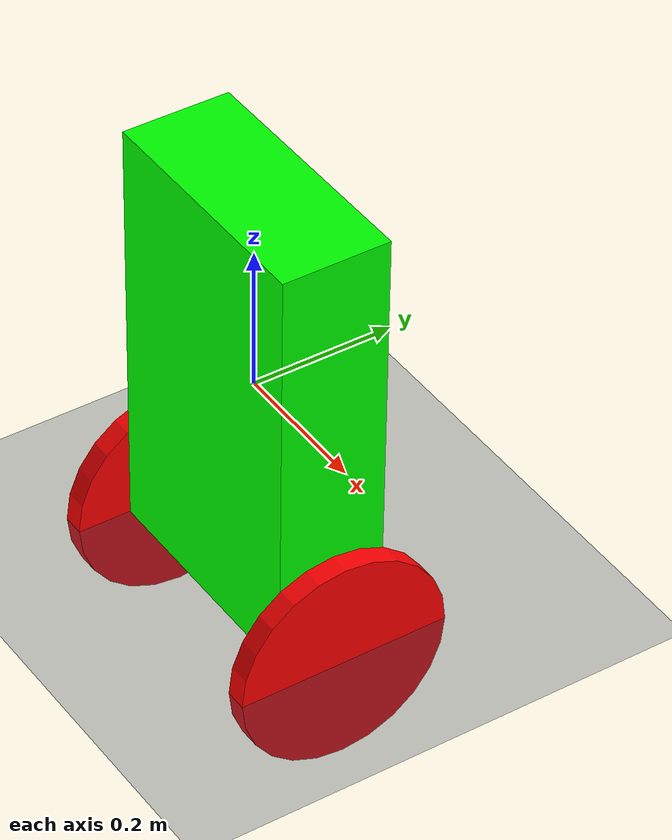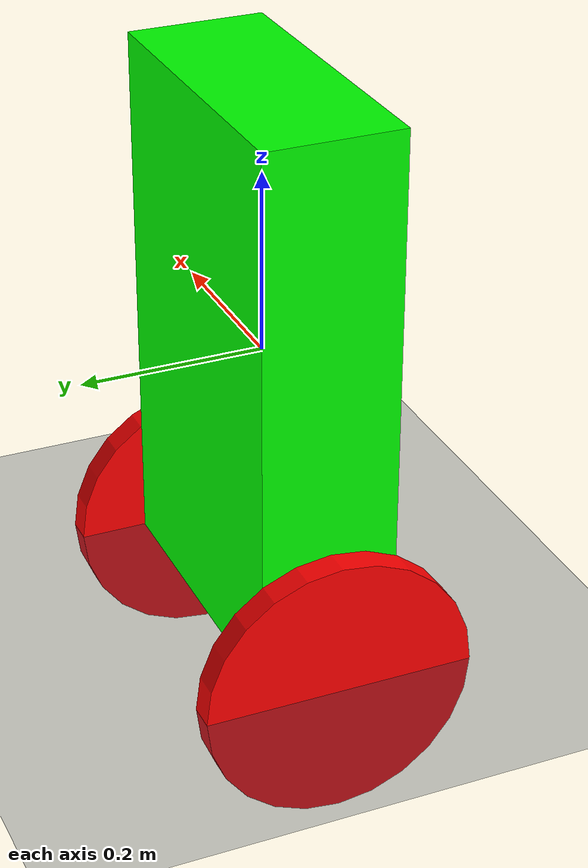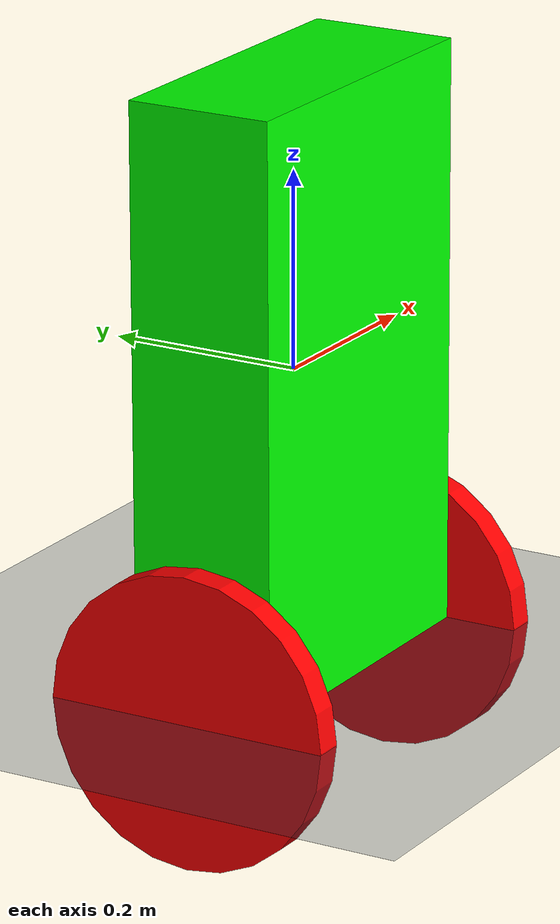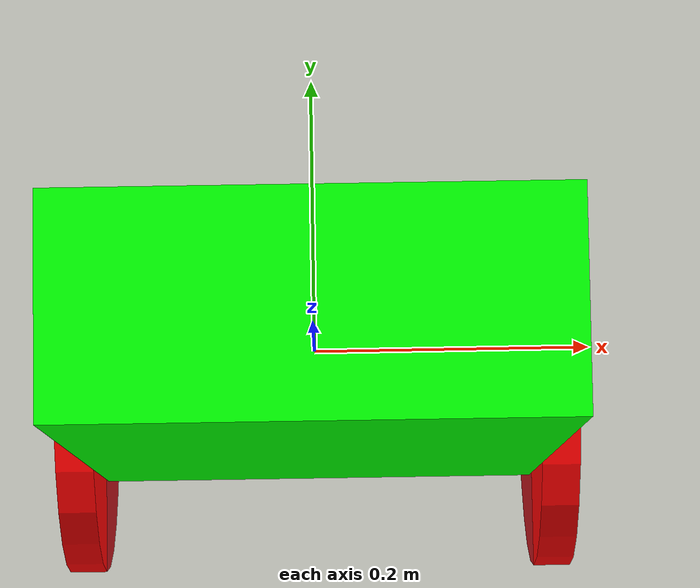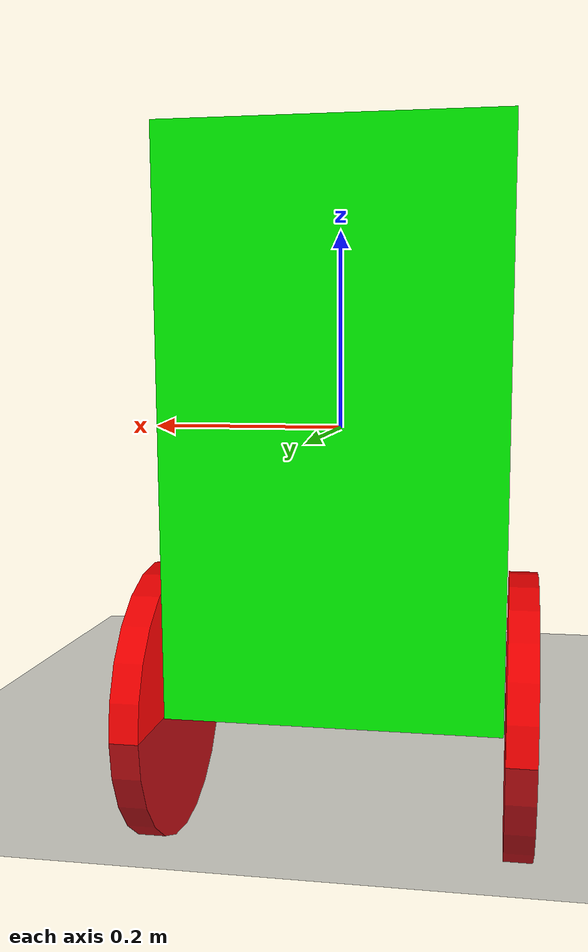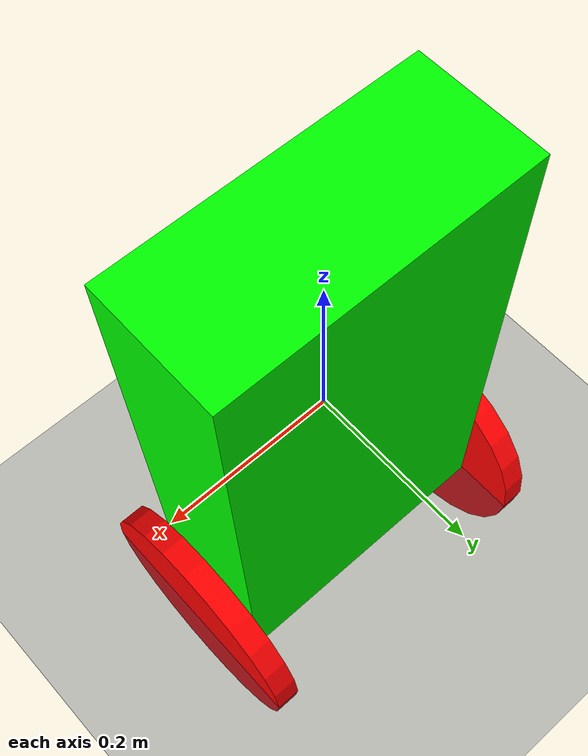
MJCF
<mujoco model="whadlo">
    <compiler inertiafromgeom='auto' angle='radian' eulerseq='zyx' meshdir='wolfie-stl-meshes'/>
    <size njmax="500" nconmax="100" />

    <visual>
        <rgba haze="0.15 0.25 0.35 1"/>
        <quality shadowsize="2048"/>
        <map stiffness="700" shadowscale="0.5" fogstart="10" fogend="15" zfar="40" haze="0.3"/>
    </visual>

    <asset>
        <texture name="texplane" type="2d" builtin="checker" rgb1=".2 .3 .4" rgb2=".1 0.15 0.2"
            width="512" height="512" mark="cross" markrgb=".8 .8 .8"/>
        <material name="matplane" reflectance="0.3" texture="texplane" texrepeat="1 1" texuniform="true"/>
    </asset>

    <worldbody>
        <light directional="true" diffuse=".4 .4 .4" specular="0.1 0.1 0.1" pos="0 0 5.0" dir="0 0 -1" castshadow="false"/>
        <light directional="true" diffuse=".6 .6 .6" specular="0.2 0.2 0.2" pos="0 0 4" dir="0 0 -1"/>
        <!-- collision for the floor: affinity = 0001 1111 co that it can collide with all robot parts  -->
        <geom name="ground" type="plane" size="0 0 1" pos="0 0 -0.3" quat="1 0 0 0" material="matplane" condim="3" conaffinity="31"/>
        <body name="tors" pos="0.0 0.0 0.0" quat="-0.705 0.707 0.0 0">
            <inertial pos="0 0 0"  mass="2.18007" diaginertia=" 0.074799408 0.031971488 0.097013512" />
            <geom size="0.175 0.3 0.075" type="box" rgba="0 1 0 1" />
            <joint type='slide' axis='1 0 0' limited='false'/>
            <joint type='slide' axis='0 1 0' limited='false'/>
            <joint type='slide' axis='0 0 1' limited='false' ref='1.01'/>
            <joint type='ball' limited='false'/>
            <body name="kolo_lewe" pos="0.192 0.3 0" quat="0.707388 0 0.706825 0">
                <inertial pos="0 0.015202 0" quat="0.707107 0 0 0.707107" mass="0.18007" diaginertia="0.0123395 0.0123395 0.0243394" />
                <joint name="z_kolo_lewe" pos="0 0 0" axis="0 0 1" limited = "false" damping='0.05'/>
                <geom size="0.15 0.015" type="cylinder" rgba="1 0 0 1" />
            </body>
            <body name="kolo_prawe" pos="-0.192 0.3 0" quat="0.707388 0 -0.706825 0">
                <inertial pos="0 0.015202 0" quat="0.707107 0 0 0.707107" mass="0.18007" diaginertia="0.0123395 0.0123395 0.0243394" />
                <joint name="z_kolo_prawe" pos="0 0 0" axis="0 0 1" limited = "false" damping='0.05' />
                <geom size="0.15 0.015" type="cylinder" rgba="1 0 0 1" />
            </body>
        </body>
    </worldbody>
    <actuator>
        <!-- User parameter is the maximum no-load motor RPM -->
        <motor name='silnik_prawy'     joint='z_kolo_prawe'    gear='4.5' ctrllimited='true' ctrlrange='-3.0 3.0' forcelimited='true' forcerange='-3.0 3.0'/>
        <motor name='silnik_lewy'   joint='z_kolo_lewe'  gear='4.5' ctrllimited='true' ctrlrange='-3.0 3.0' forcelimited='true' forcerange='-3.0 3.0'/>

    </actuator>
</mujoco>
